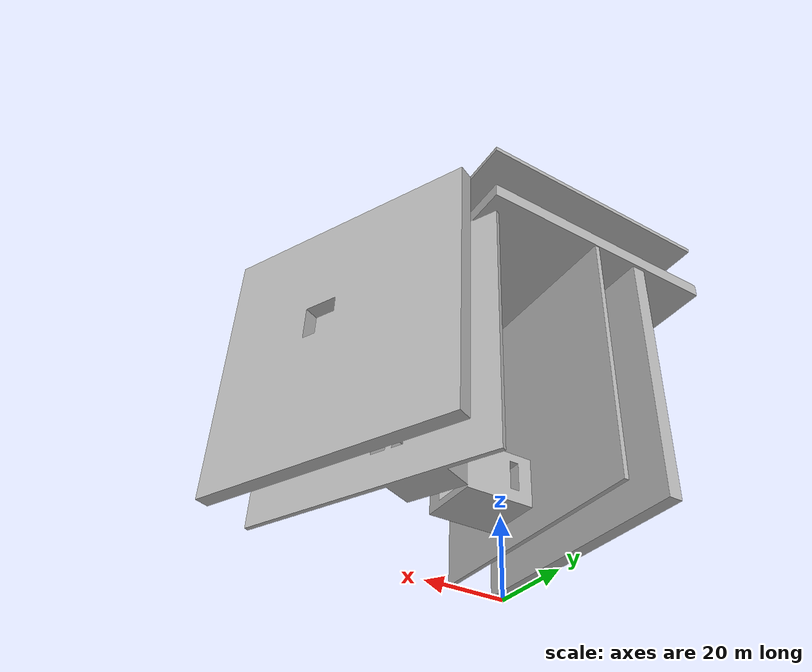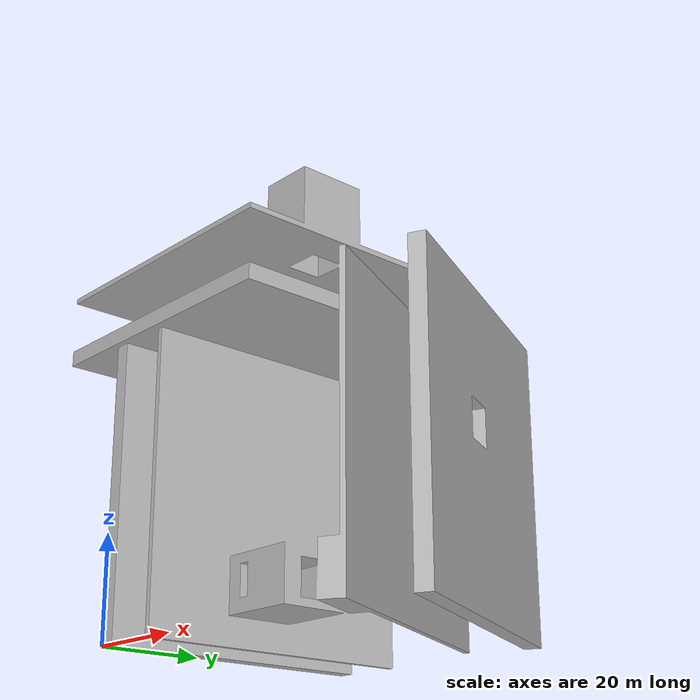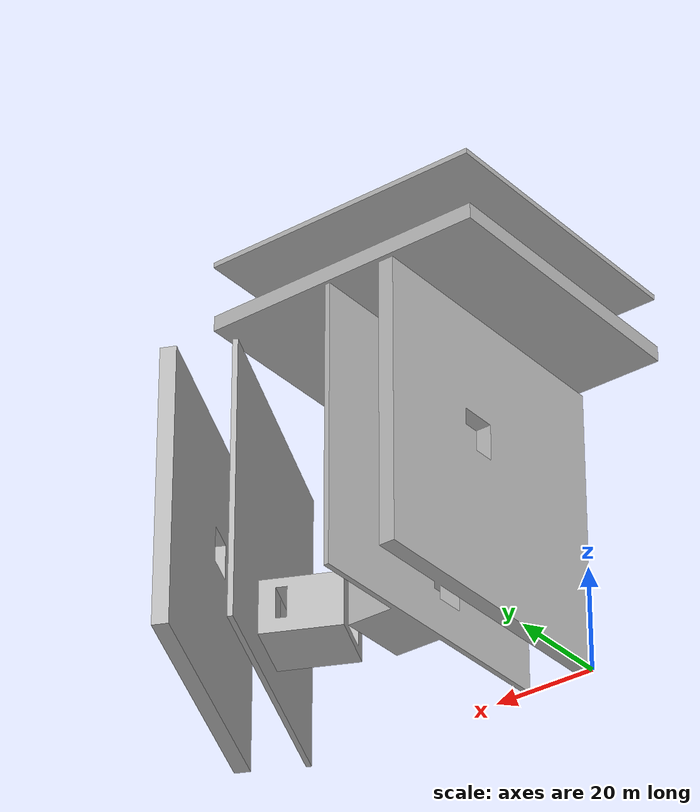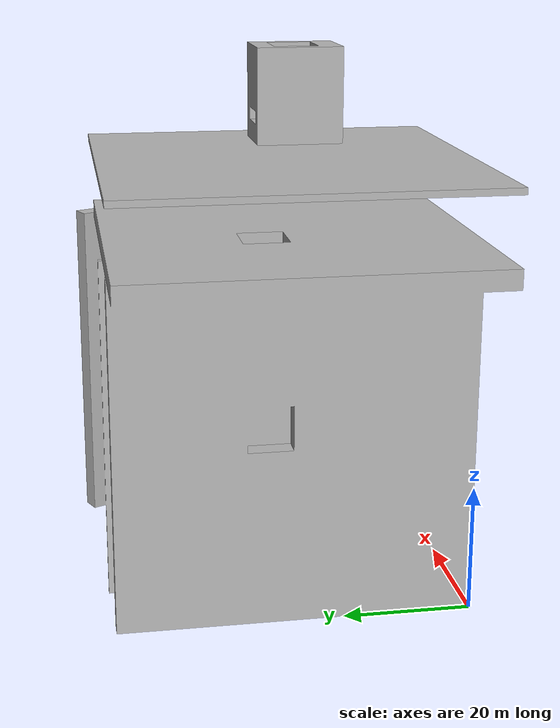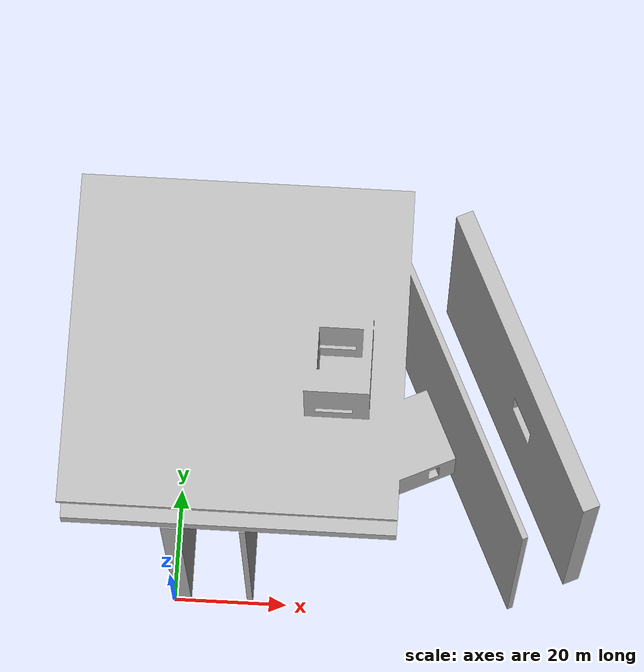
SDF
<?xml version="1.0" ?>
<sdf version="1.5">
  <model name="puzzle_world">
    <static>true</static>
    <link name="link">
      <pose>0 0 0.01 0 0 0</pose>
      <collision name="wall1">
        <geometry>
          <mesh>
            <uri>model://puzzle_3/meshes/PUZZLE2.stl</uri>
          </mesh>
        </geometry>
      </collision>
      <visual name="visual1">
        <geometry>
          <mesh>
            <uri>model://puzzle_3/meshes/PUZZLE2.stl</uri>
          </mesh>
        </geometry>
      </visual>
    </link>
  </model>
</sdf>
